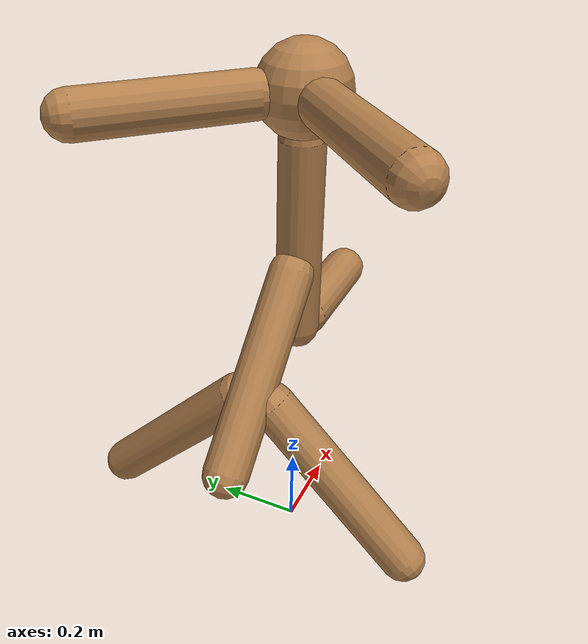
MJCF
<?xml version='1.0' encoding='UTF-8'?>
<!-- Universal Animal Template: unimal -->
<mujoco model="unimal">
  <compiler angle="degree"/>
  <size njmax="2000" nconmax="500"/>
  <option timestep=".005">
    <flag filterparent="disable"/>
  </option>
  <!-- Common defaults to make search space tractable -->
  <default>
    <!-- Define motor defaults -->
    <motor ctrlrange="-1 1" ctrllimited="true"/>
    <!-- Define joint defaults -->
    <default class="normal_joint">
      <joint type="hinge" damping="1" stiffness="1" armature="1" limited="true" range="-120 120" solimplimit="0 0.99 0.01"/>
    </default>
    <default class="walker_joint">
      <joint type="hinge" damping="0.2" stiffness="1" armature=".01" limited="true" range="-120 120" solimplimit="0 0.99 0.01"/>
    </default>
    <default class="stiff_joint">
      <joint type="hinge" damping="5" stiffness="10" armature=".01" limited="true" solimplimit="0 0.99 0.01"/>
    </default>
    <default class="free">
      <joint limited="false" damping="0" armature="0" stiffness="0"/>
    </default>
    <default class="growth_site">
      <site size="1e-6 1e-6 1e-6"/>
    </default>
    <default class="torso_growth_site">
      <site size="1e-6 1e-6 1e-6"/>
    </default>
    <default class="mirror_growth_site">
      <site size="1e-6 1e-6 1e-6"/>
    </default>
    <default class="btm_pos_site">
      <site size="1e-6 1e-6 1e-6"/>
    </default>
    <default class="box_face_site">
      <site size="1e-6 1e-6 1e-6"/>
    </default>
    <default class="imu_vel">
      <site type="box" size="0.05" rgba="1 0 0 0"/>
    </default>
    <default class="touch_site">
      <site group="3" rgba="0 0 1 .3"/>
    </default>
    <default class="food_site">
      <site material="food" size="0.15"/>
    </default>
    <!-- Define geom defaults -->
    <geom type="capsule" condim="3" friction="0.7 0.1 0.1" material="self"/>
  </default>
  <worldbody>
    <light diffuse="1 1 1" directional="true" exponent="1" pos="0 0 8" specular="0.1 0.1 0.1" dir="0 0 -1"/>
    <!-- Programatically generated xml goes here -->
    <body name="torso/0" pos="0 0 1.16">
      <joint name="root" type="free" class="free"/>
      <site name="root" class="imu_vel"/>
      <geom name="torso/0" type="sphere" size="0.1" condim="3" density="900"/>
      <camera name="side" pos="0 -7 2" xyaxes="1 0 0 0 1 2" mode="trackcom"/>
      <site name="torso/0" class="growth_site" pos="0 0 0"/>
      <site name="torso/btm_pos/0" class="btm_pos_site" pos="0 0 -0.1"/>
      <site name="torso/touch/0" class="touch_site" size="0.11"/>
      <site name="torso/vertical/0" class="torso_growth_site" pos="0 0 -0.1"/>
      <body name="limb/0" pos="0.0 0.0 -0.1">
        <joint name="limbx/0" type="hinge" class="normal_joint" range="-30 0" pos="0.0 0.0 0.05" axis="1.0 0.0 0.0"/>
        <geom name="limb/0" type="capsule" fromto="0.0 0.0 0.0 0.0 0.0 -0.45" size="0.05" density="500"/>
        <site name="limb/mid/0" class="growth_site" pos="0.0 0.0 -0.25"/>
        <site name="limb/btm/0" class="growth_site" pos="0.0 0.0 -0.45"/>
        <site name="limb/btm_pos/0" class="btm_pos_site" pos="0.0 0.0 -0.45"/>
        <site name="limb/touch/0" class="touch_site" size="0.060000000000000005" fromto="0.0 0.0 0.0 0.0 0.0 -0.45" type="capsule"/>
        <body name="limb/13" pos="-0.04 0.0 -0.29">
          <joint name="limbx/13" type="hinge" class="normal_joint" range="0 60" pos="0.04 0.0 0.04" axis="0.7071 0.0 -0.7071"/>
          <joint name="limby/13" type="hinge" class="normal_joint" range="-30 60" pos="0.04 0.0 0.04" axis="0.0 1.0 0.0"/>
          <geom name="limb/13" type="capsule" fromto="0.0 0.0 0.0 -0.32 0.0 -0.32" size="0.05" density="500"/>
          <site name="limb/mid/13" class="growth_site" pos="-0.18 0.0 -0.18"/>
          <site name="limb/btm/13" class="growth_site" pos="-0.32 0.0 -0.32"/>
          <site name="limb/btm_pos/13" class="btm_pos_site" pos="-0.32 0.0 -0.32"/>
          <site name="limb/touch/13" class="touch_site" size="0.060000000000000005" fromto="0.0 0.0 0.0 -0.32 0.0 -0.32" type="capsule"/>
          <body name="limb/25" pos="-0.18 0.04 -0.22">
            <joint name="limby/25" type="hinge" class="normal_joint" range="-30 60" pos="0.0 -0.04 0.04" axis="0.0 0.7071 0.7071"/>
            <geom name="limb/25" type="capsule" fromto="0.0 0.0 0.0 0.0 0.32 -0.32" size="0.05" density="500"/>
            <site name="limb/mid/25" class="mirror_growth_site" pos="0.0 0.18 -0.18"/>
            <site name="limb/btm/25" class="mirror_growth_site" pos="0.0 0.32 -0.32"/>
            <site name="limb/btm_pos/25" class="btm_pos_site" pos="0.0 0.35 -0.35"/>
            <site name="limb/touch/25" class="touch_site" size="0.060000000000000005" fromto="0.0 0.0 0.0 0.0 0.32 -0.32" type="capsule"/>
          </body>
          <body name="limb/26" pos="-0.18 -0.04 -0.22">
            <joint name="limby/26" type="hinge" class="normal_joint" range="-30 60" pos="0.0 0.04 0.04" axis="-0.0 0.7071 -0.7071"/>
            <geom name="limb/26" type="capsule" fromto="0.0 0.0 0.0 0.0 -0.32 -0.32" size="0.05" density="500"/>
            <site name="limb/mid/26" class="mirror_growth_site" pos="0.0 -0.18 -0.18"/>
            <site name="limb/btm/26" class="mirror_growth_site" pos="0.0 -0.32 -0.32"/>
            <site name="limb/btm_pos/26" class="btm_pos_site" pos="0.0 -0.35 -0.35"/>
            <site name="limb/touch/26" class="touch_site" size="0.060000000000000005" fromto="0.0 0.0 0.0 0.0 -0.32 -0.32" type="capsule"/>
          </body>
        </body>
        <body name="limb/22" pos="0.05 0.0 -0.45">
          <joint name="limbx/22" type="hinge" class="normal_joint" range="-30 0" pos="-0.05 0.0 0.0" axis="0.0 0.0 1.0"/>
          <geom name="limb/22" type="capsule" fromto="0.0 0.0 0.0 0.25 0.0 0.0" size="0.05" density="500"/>
          <site name="limb/mid/22" class="growth_site" pos="0.15 0.0 0.0"/>
          <site name="limb/btm/22" class="growth_site" pos="0.25 0.0 0.0"/>
          <site name="limb/btm_pos/22" class="btm_pos_site" pos="0.3 0.0 0.0"/>
          <site name="limb/touch/22" class="touch_site" size="0.060000000000000005" fromto="0.0 0.0 0.0 0.25 0.0 0.0" type="capsule"/>
        </body>
      </body>
      <body name="limb/27" pos="-0.07 0.07 0.0">
        <joint name="limbx/27" type="hinge" class="normal_joint" range="-60 60" pos="0.04 -0.04 0.0" axis="0.5 0.5 -0.7071"/>
        <joint name="limby/27" type="hinge" class="normal_joint" range="-30 60" pos="0.04 -0.04 0.0" axis="0.5 0.5 0.7071"/>
        <geom name="limb/27" type="capsule" fromto="0.0 0.0 0.0 -0.25 0.25 0.0" size="0.05" density="500"/>
        <site name="limb/mid/27" class="mirror_growth_site" pos="-0.14 0.14 0.0"/>
        <site name="limb/btm/27" class="mirror_growth_site" pos="-0.25 0.25 0.0"/>
        <site name="limb/btm_pos/27" class="btm_pos_site" pos="-0.28 0.28 0.0"/>
        <site name="limb/touch/27" class="touch_site" size="0.060000000000000005" fromto="0.0 0.0 0.0 -0.25 0.25 0.0" type="capsule"/>
      </body>
      <body name="limb/28" pos="-0.07 -0.07 0.0">
        <joint name="limbx/28" type="hinge" class="normal_joint" range="-60 60" pos="0.04 0.04 0.0" axis="0.5 -0.5 -0.7071"/>
        <joint name="limby/28" type="hinge" class="normal_joint" range="-30 60" pos="0.04 0.04 0.0" axis="-0.5 0.5 -0.7071"/>
        <geom name="limb/28" type="capsule" fromto="0.0 0.0 0.0 -0.25 -0.25 0.0" size="0.05" density="500"/>
        <site name="limb/mid/28" class="mirror_growth_site" pos="-0.14 -0.14 0.0"/>
        <site name="limb/btm/28" class="mirror_growth_site" pos="-0.25 -0.25 0.0"/>
        <site name="limb/btm_pos/28" class="btm_pos_site" pos="-0.28 -0.28 0.0"/>
        <site name="limb/touch/28" class="touch_site" size="0.060000000000000005" fromto="0.0 0.0 0.0 -0.25 -0.25 0.0" type="capsule"/>
      </body>
    </body>
  </worldbody>
  <actuator>
    <motor joint="limbx/0" gear="150" name="limbx/0"/>
    <motor joint="limbx/13" gear="150" name="limbx/13"/>
    <motor joint="limby/13" gear="250" name="limby/13"/>
    <motor joint="limby/25" gear="200" name="limby/25"/>
    <motor joint="limby/26" gear="200" name="limby/26"/>
    <motor joint="limbx/22" gear="300" name="limbx/22"/>
    <motor joint="limbx/27" gear="200" name="limbx/27"/>
    <motor joint="limby/27" gear="150" name="limby/27"/>
    <motor joint="limbx/28" gear="200" name="limbx/28"/>
    <motor joint="limby/28" gear="150" name="limby/28"/>
  </actuator>
  <sensor>
    <accelerometer name="torso_accel" site="root"/>
    <gyro name="torso_gyro" site="root"/>
    <velocimeter name="torso_vel" site="root"/>
    <subtreeangmom name="unimal_am" body="torso/0"/>
    <touch name="torso/0" site="torso/touch/0"/>
    <touch name="limb/0" site="limb/touch/0"/>
    <touch name="limb/13" site="limb/touch/13"/>
    <touch name="limb/25" site="limb/touch/25"/>
    <touch name="limb/26" site="limb/touch/26"/>
    <touch name="limb/22" site="limb/touch/22"/>
    <touch name="limb/27" site="limb/touch/27"/>
    <touch name="limb/28" site="limb/touch/28"/>
  </sensor>
  <!-- Add hfield assets -->
  <asset/>
  <!-- List of contacts to exclude -->
  <contact>
    <exclude name="limb/25:limb/26" body1="limb/25" body2="limb/26"/>
  </contact>
  <!-- Define material, texture etc -->
  <asset>
    <material name="grid" texture="grid" texrepeat="1 1" texuniform="true" reflectance="0.1"/>
    <material name="hfield" texture="hfield" texrepeat="1 1" texuniform="true" reflectance="0.1"/>
    <material name="wall" texture="wall" texrepeat="1 1" texuniform="true" reflectance=".5"/>
    <material name="platform" texture="platform" texrepeat="1 1" texuniform="true" reflectance=".5"/>
    <material name="boundary" texture="boundary" texrepeat="1 1" texuniform="true" reflectance=".5"/>
    <material name="jump" texture="jump" texrepeat="1 1" texuniform="true" reflectance=".5"/>
    <material name="goal" rgba="1 0 0 1"/>
    <material name="food" rgba="0 0 1 1" emission="1"/>
    <material name="init_position" rgba="0 1 0 0.7"/>
    <material name="self" rgba=".7 .5 .3 1"/>
    <material name="self_invisible" rgba=".7 .5 .3 0"/>
    <material name="self_default" rgba=".7 .5 .3 1"/>
    <material name="self_highlight" rgba="0 .5 .3 1"/>
    <material name="effector" rgba=".7 .4 .2 1"/>
    <material name="effector_default" rgba=".7 .4 .2 1"/>
    <material name="effector_highlight" rgba="0 .5 .3 1"/>
    <material name="decoration" rgba=".3 .5 .7 1"/>
    <material name="eye" rgba="0 .2 1 1"/>
    <material name="target" rgba=".6 .3 .3 1"/>
    <material name="target_default" rgba=".6 .3 .3 1"/>
    <material name="target_highlight" rgba=".6 .3 .3 .4"/>
    <material name="site" rgba=".5 .5 .5 .3"/>
    <material name="ball" texture="ball"/>
  </asset>
  <asset>
    <texture name="grid" type="2d" builtin="checker" rgb1="0.4 0.4 0.4" rgb2="0.4 0.4 0.4" width="300" height="300" mark="edge" markrgb="0.2 0.2 0.2"/>
    <texture name="hfield" type="2d" builtin="checker" rgb1="0.4 0.4 0.4" rgb2="0.4 0.4 0.4" width="300" height="300" mark="edge" markrgb="0.2 0.2 0.2"/>
    <texture name="wall" type="2d" builtin="flat" rgb1="0.9 0.7 0" rgb2="0.9 0.7 0" width="300" height="300"/>
    <texture name="platform" type="2d" builtin="flat" rgb1="0.3 0 0.8" rgb2="0.3 0 0.8" width="300" height="300"/>
    <texture name="boundary" type="2d" builtin="flat" rgb1="0.3 0.3 0.3" rgb2="0.3 0.3 0.3" width="300" height="300"/>
    <texture name="jump" type="2d" builtin="flat" rgb1="0.3 0.3 0.3" rgb2="0.3 0.3 0.3" width="300" height="300"/>
    <texture name="skybox" type="skybox" builtin="gradient" rgb1="1 1 1" rgb2="0.6 0.6 0.6" width="800" height="800"/>
    <texture name="ball" builtin="checker" mark="cross" width="151" height="151" rgb1="0.1 0.1 0.1" rgb2="0.9 0.9 0.9" markrgb="1 1 1"/>
  </asset>
  <visual>
    <headlight ambient="0.6 0.6 0.6" diffuse="0.3 0.3 0.3" specular="0 0 0"/>
    <map znear=".01" shadowclip="0.5"/>
    <quality shadowsize="16384"/>
  </visual>
</mujoco>
